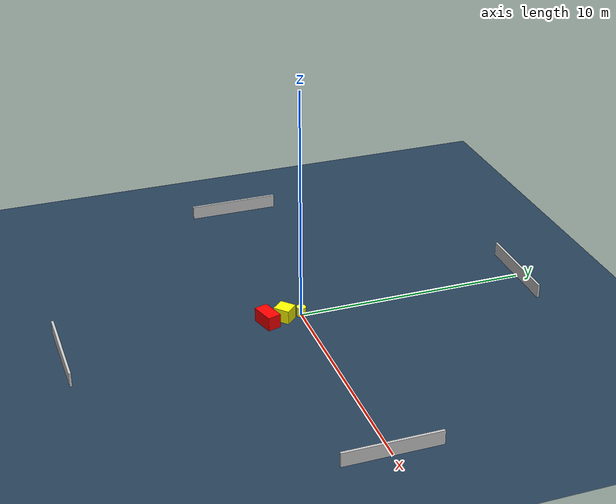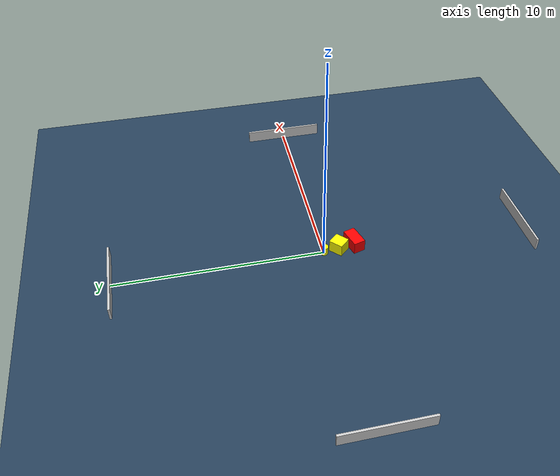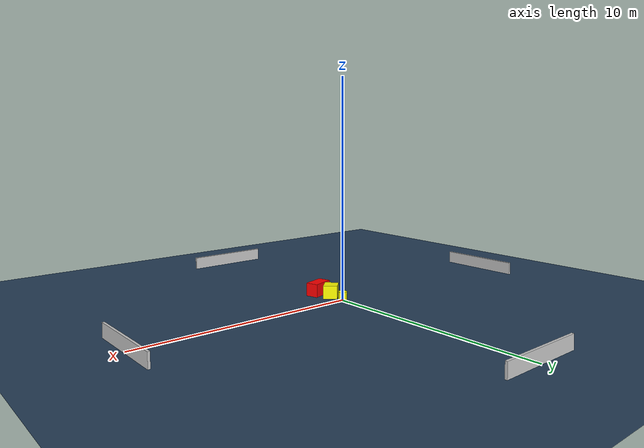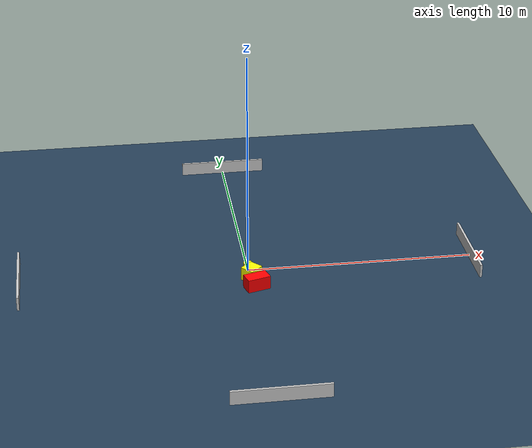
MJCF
<?xml version="1.0" ?>
<mujoco model="generated_environment">
  <option timestep="0.01" integrator="RK4" cone="elliptic"/>
  <default>
    <geom density="1"/>
  </default>
  <asset>
    <texture builtin="gradient" height="3072" name="skybox" rgb1="0.3 0.5 0.7" rgb2="0 0 0" type="skybox" width="512"/>
    <texture builtin="checker" height="300" name="groundplane" rgb1="0.2 0.3 0.4" rgb2="0.1 0.2 0.3" type="2d" width="300"/>
    <material name="groundplane" reflectance="0.2" texrepeat="5 5" texture="groundplane"/>
  </asset>
  <worldbody>
    <light dir="0 0 -1" directional="true" pos="0 0 1.5"/>
    <geom condim="3" friction="0.5 0.005 0.001" material="groundplane" name="floor" pos="0 0 0" size="0 0 0.05" type="plane"/>
    <body name="walls">
      <geom name="wall_1" condim="4" pos="-10.0 0.0 0.3" rgba="0.800000011920929 0.800000011920929 0.800000011920929 1.0" size="0.05 2.0 0.3" type="box"/>
      <geom name="wall_2" condim="4" pos="10.0 0.0 0.3" rgba="0.800000011920929 0.800000011920929 0.800000011920929 1.0" size="0.05 2.0 0.3" type="box"/>
      <geom name="wall_3" condim="4" pos="0.0 -10.0 0.3" rgba="0.800000011920929 0.800000011920929 0.800000011920929 1.0" size="2.0 0.05 0.3" type="box"/>
      <geom name="wall_4" condim="4" pos="0.0 10.0 0.3" rgba="0.800000011920929 0.800000011920929 0.800000011920929 1.0" size="2.0 0.05 0.3" type="box"/>
    </body>
    <body name="robot">
      <joint name="joint_x" type="slide" pos="0 0 0" axis="1 0 0"/>
      <joint name="joint_y" type="slide" pos="0 0 0" axis="0 1 0"/>
      <geom name="robot" type="cylinder" pos="0.0 0.0 0.2" size="0.2 0.2 0.0" mass="5.0" friction="1.0 0.005 0.0001" condim="4" rgba="1.0 1.0 0.0 1.0"/>
    </body>
    <body name="obstacle_1_movable">
      <geom name="obstacle_1_movable" condim="4" pos="0.06131382413078512 -0.7460708809165146 0.3" euler="0 0 223.0647910698357" friction="0.0 0.005 0.001" rgba="1.0 1.0 0.0 1.0" size="0.34344924042736913 0.3182699088537608 0.3" type="box" mass="0.1"/>
      <joint type="free"/>
    </body>
    <body name="obstacle_2_static">
      <geom name="obstacle_2_static" condim="4" pos="0.18921530474323978 -1.5271103873772747 0.3" euler="0 0 196.1265989662225" friction="0.0 0.005 0.001" rgba="1.0 0.0 0.0 1.0" size="0.5148283689630062 0.29054563558614127 0.3" type="box"/>
    </body>
  </worldbody>
  <actuator>
    <motor name="actuator_x" joint="joint_x" gear="1" ctrlrange="-1 1"/>
    <motor name="actuator_y" joint="joint_y" gear="1" ctrlrange="-1 1"/>
  </actuator>
</mujoco>
